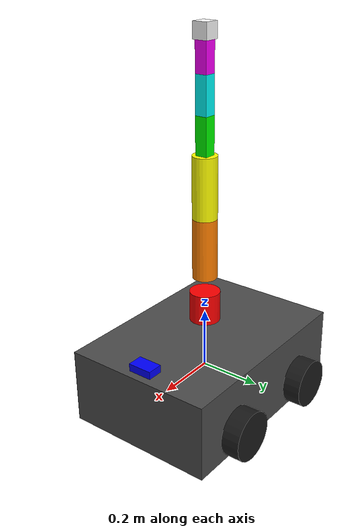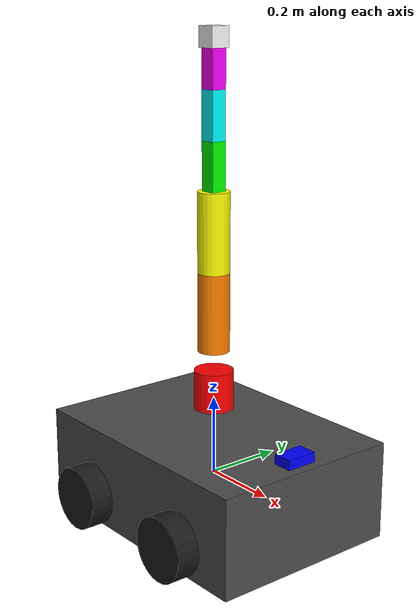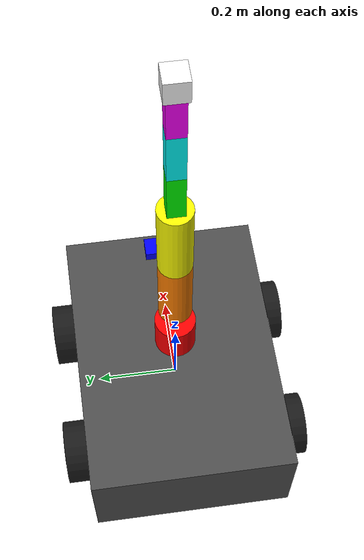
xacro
<?xml version="1.0"?>
<robot xmlns:xacro="http://www.ros.org/wiki/xacro" name="mobile_robot_with_arm">

  <xacro:include filename="$(find your_robot_description)/urdf/base.urdf.xacro" />
  <xacro:include filename="$(find your_robot_description)/urdf/manipulator.urdf.xacro" />
  <xacro:include filename="$(find your_robot_description)/urdf/sensors.urdf.xacro" />
  <xacro:include filename="$(find your_robot_description)/urdf/gazebo.urdf.xacro" />

  <xacro:property name="PI" value="3.14159265359" />
  <xacro:property name="base_length" value="0.7" />
  <xacro:property name="base_width" value="0.5" />
  <xacro:property name="base_height" value="0.25" />
  <xacro:property name="base_mass" value="15.0" />
  <xacro:property name="wheel_radius" value="0.08" />
  <xacro:property name="wheel_width" value="0.06" />
  <xacro:property name="wheel_mass" value="1.0" />
  <xacro:property name="arm_mass" value="10.0" />
  <xacro:property name="link_length" value="0.2" />

  <link name="world" />

  <joint name="world_to_base" type="fixed">
    <parent link="world" />
    <child link="base_link" />
    <origin xyz="0 0 0" rpy="0 0 0" />
  </joint>

  <xacro:create_base_platform
    base_length="${base_length}"
    base_width="${base_width}"
    base_height="${base_height}"
    base_mass="${base_mass}"
    wheel_radius="${wheel_radius}"
    wheel_width="${wheel_width}"
    wheel_mass="${wheel_mass}"
    PI="${PI}" />

  <xacro:create_manipulator
    arm_mass="${arm_mass}"
    link_length="${link_length}"
    PI="${PI}" />

  <xacro:create_sensors />

</robot>

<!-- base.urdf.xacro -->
<robot xmlns:xacro="http://www.ros.org/wiki/xacro">

  <xacro:macro name="create_base_platform" params="base_length base_width base_height base_mass wheel_radius wheel_width wheel_mass PI">

    <link name="base_link">
      <inertial>
        <mass value="${base_mass}" />
        <inertia ixx="0.5" ixy="0" ixz="0" iyy="0.5" iyz="0" izz="1.0" />
      </inertial>
      <visual>
        <geometry>
          <box size="${base_length} ${base_width} ${base_height}" />
        </geometry>
        <material name="DarkGray">
          <color rgba="0.3 0.3 0.3 1.0" />
        </material>
      </visual>
      <collision>
        <geometry>
          <box size="${base_length} ${base_width} ${base_height}" />
        </geometry>
      </collision>
    </link>

    <joint name="base_to_lidar" type="fixed">
      <parent link="base_link" />
      <child link="lidar_link" />
      <origin xyz="0 0 ${base_height/2 + 0.1}" rpy="0 0 0" />
    </joint>

    <joint name="base_to_camera" type="fixed">
      <parent link="base_link" />
      <child link="camera_link" />
      <origin xyz="${base_length/2 - 0.05} 0 ${base_height/2}" rpy="0 0 0" />
    </joint>

    <joint name="base_to_arm_base" type="fixed">
      <parent link="base_link" />
      <child link="arm_base_link" />
      <origin xyz="0 0 ${base_height/2 + 0.05}" rpy="0 0 0" />
    </joint>

    <xacro:macro name="mecanum_wheel" params="name parent_link x y">
      <link name="${name}">
        <inertial>
          <mass value="${wheel_mass}" />
          <inertia
            ixx="${0.5 * wheel_mass * wheel_radius * wheel_radius}"
            ixy="0" ixz="0"
            iyy="${0.5 * wheel_mass * wheel_radius * wheel_radius}"
            iyz="0"
            izz="${0.5 * wheel_mass * wheel_radius * wheel_radius}" />
        </inertial>
        <visual>
          <geometry>
            <cylinder radius="${wheel_radius}" length="${wheel_width}" />
          </geometry>
          <material name="Black">
            <color rgba="0.1 0.1 0.1 1.0" />
          </material>
          <origin rpy="${PI/2} 0 0" />
        </visual>
        <collision>
          <geometry>
            <cylinder radius="${wheel_radius}" length="${wheel_width}" />
          </geometry>
          <origin rpy="${PI/2} 0 0" />
        </collision>
      </link>

      <joint name="${name}_joint" type="continuous">
        <parent link="${parent_link}" />
        <child link="${name}" />
        <origin xyz="${x} ${y} -0.05" rpy="0 0 0" />
        <axis xyz="0 1 0" />
        <limit effort="100" velocity="10" />
      </joint>
    </xacro:macro>

    <xacro:mecanum_wheel name="wheel_fl" parent_link="base_link" x="${base_length/4}" y="${base_width/2 + wheel_width/2}" />
    <xacro:mecanum_wheel name="wheel_fr" parent_link="base_link" x="${base_length/4}" y="-${base_width/2 + wheel_width/2}" />
    <xacro:mecanum_wheel name="wheel_rl" parent_link="base_link" x="-${base_length/4}" y="${base_width/2 + wheel_width/2}" />
    <xacro:mecanum_wheel name="wheel_rr" parent_link="base_link" x="-${base_length/4}" y="-${base_width/2 + wheel_width/2}" />

  </xacro:macro>

</robot>

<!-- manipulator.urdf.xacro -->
<robot xmlns:xacro="http://www.ros.org/wiki/xacro">

  <xacro:macro name="create_manipulator" params="arm_mass link_length PI">

    <link name="arm_base_link" />

    <link name="link_1">
      <inertial>
        <mass value="${arm_mass/6}" />
        <inertia ixx="0.01" ixy="0" ixz="0" iyy="0.01" iyz="0" izz="0.01" />
      </inertial>
      <visual>
        <geometry>
          <cylinder radius="0.05" length="0.1" />
        </geometry>
        <material name="Red">
          <color rgba="1.0 0.0 0.0 1.0" />
        </material>
      </visual>
      <collision>
        <geometry>
          <cylinder radius="0.05" length="0.1" />
        </geometry>
      </collision>
    </link>

    <joint name="joint_1" type="revolute">
      <parent link="arm_base_link" />
      <child link="link_1" />
      <origin xyz="0 0 0.05" rpy="0 0 0" />
      <axis xyz="0 0 1" />
      <limit lower="-${PI}" upper="${PI}" effort="100" velocity="2" />
      <dynamics damping="0.1" friction="0.1" />
    </joint>

    <link name="link_2">
      <inertial>
        <mass value="${arm_mass/6}" />
        <inertia ixx="0.01" ixy="0" ixz="0" iyy="0.01" iyz="0" izz="0.01" />
      </inertial>
      <visual>
        <geometry>
          <cylinder radius="0.04" length="${link_length}" />
        </geometry>
        <material name="Orange">
          <color rgba="1.0 0.5 0.0 1.0" />
        </material>
        <origin xyz="0 0 ${link_length/2}" rpy="0 0 0" />
      </visual>
      <collision>
        <geometry>
          <cylinder radius="0.04" length="${link_length}" />
        </geometry>
        <origin xyz="0 0 ${link_length/2}" rpy="0 0 0" />
      </collision>
    </link>

    <joint name="joint_2" type="revolute">
      <parent link="link_1" />
      <child link="link_2" />
      <origin xyz="0 0 0.1" rpy="0 0 0" />
      <axis xyz="0 1 0" />
      <limit lower="-${PI/2}" upper="${PI/2}" effort="100" velocity="2" />
      <dynamics damping="0.1" friction="0.1" />
    </joint>

    <link name="link_3">
      <inertial>
        <mass value="${arm_mass/6}" />
        <inertia ixx="0.01" ixy="0" ixz="0" iyy="0.01" iyz="0" izz="0.01" />
      </inertial>
      <visual>
        <geometry>
          <cylinder radius="0.04" length="${link_length}" />
        </geometry>
        <material name="Yellow">
          <color rgba="1.0 1.0 0.0 1.0" />
        </material>
        <origin xyz="0 0 ${link_length/2}" rpy="0 0 0" />
      </visual>
      <collision>
        <geometry>
          <cylinder radius="0.04" length="${link_length}" />
        </geometry>
        <origin xyz="0 0 ${link_length/2}" rpy="0 0 0" />
      </collision>
    </link>

    <joint name="joint_3" type="revolute">
      <parent link="link_2" />
      <child link="link_3" />
      <origin xyz="0 0 ${link_length}" rpy="0 0 0" />
      <axis xyz="0 1 0" />
      <limit lower="-${PI/2}" upper="${PI/2}" effort="100" velocity="2" />
      <dynamics damping="0.1" friction="0.1" />
    </joint>

    <link name="link_4">
      <inertial>
        <mass value="${arm_mass/6}" />
        <inertia ixx="0.01" ixy="0" ixz="0" iyy="0.01" iyz="0" izz="0.01" />
      </inertial>
      <visual>
        <geometry>
          <box size="0.04 0.04 0.12" />
        </geometry>
        <material name="Green">
          <color rgba="0.0 1.0 0.0 1.0" />
        </material>
        <origin xyz="0 0 0.06" rpy="0 0 0" />
      </visual>
      <collision>
        <geometry>
          <box size="0.04 0.04 0.12" />
        </geometry>
        <origin xyz="0 0 0.06" rpy="0 0 0" />
      </collision>
    </link>

    <joint name="joint_4" type="revolute">
      <parent link="link_3" />
      <child link="link_4" />
      <origin xyz="0 0 ${link_length}" rpy="0 0 0" />
      <axis xyz="1 0 0" />
      <limit lower="-${PI}" upper="${PI}" effort="50" velocity="2" />
      <dynamics damping="0.1" friction="0.1" />
    </joint>

    <link name="link_5">
      <inertial>
        <mass value="${arm_mass/6}" />
        <inertia ixx="0.01" ixy="0" ixz="0" iyy="0.01" iyz="0" izz="0.01" />
      </inertial>
      <visual>
        <geometry>
          <box size="0.04 0.04 0.12" />
        </geometry>
        <material name="Cyan">
          <color rgba="0.0 1.0 1.0 1.0" />
        </material>
        <origin xyz="0 0 0.06" rpy="0 0 0" />
      </visual>
      <collision>
        <geometry>
          <box size="0.04 0.04 0.12" />
        </geometry>
        <origin xyz="0 0 0.06" rpy="0 0 0" />
      </collision>
    </link>

    <joint name="joint_5" type="revolute">
      <parent link="link_4" />
      <child link="link_5" />
      <origin xyz="0 0 0.12" rpy="0 0 0" />
      <axis xyz="0 1 0" />
      <limit lower="-${PI}" upper="${PI}" effort="50" velocity="2" />
      <dynamics damping="0.1" friction="0.1" />
    </joint>

    <link name="link_6">
      <inertial>
        <mass value="${arm_mass/6}" />
        <inertia ixx="0.01" ixy="0" ixz="0" iyy="0.01" iyz="0" izz="0.01" />
      </inertial>
      <visual>
        <geometry>
          <box size="0.04 0.04 0.12" />
        </geometry>
        <material name="Magenta">
          <color rgba="1.0 0.0 1.0 1.0" />
        </material>
        <origin xyz="0 0 0.06" rpy="0 0 0" />
      </visual>
      <collision>
        <geometry>
          <box size="0.04 0.04 0.12" />
        </geometry>
        <origin xyz="0 0 0.06" rpy="0 0 0" />
      </collision>
    </link>

    <joint name="joint_6" type="revolute">
      <parent link="link_5" />
      <child link="link_6" />
      <origin xyz="0 0 0.12" rpy="0 0 0" />
      <axis xyz="1 0 0" />
      <limit lower="-${PI}" upper="${PI}" effort="50" velocity="2" />
      <dynamics damping="0.1" friction="0.1" />
    </joint>

    <link name="gripper_link">
      <inertial>
        <mass value="0.5" />
        <inertia ixx="0.001" ixy="0" ixz="0" iyy="0.001" iyz="0" izz="0.001" />
      </inertial>
      <visual>
        <geometry>
          <box size="0.05 0.05 0.05" />
        </geometry>
        <material name="White">
          <color rgba="1.0 1.0 1.0 1.0" />
        </material>
      </visual>
      <collision>
        <geometry>
          <box size="0.05 0.05 0.05" />
        </geometry>
      </collision>
    </link>

    <joint name="joint_6_to_gripper" type="fixed">
      <parent link="link_6" />
      <child link="gripper_link" />
      <origin xyz="0 0 0.12" rpy="0 0 0" />
    </joint>

  </xacro:macro>

</robot>

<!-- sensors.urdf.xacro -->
<robot xmlns:xacro="http://www.ros.org/wiki/xacro">

  <xacro:macro name="create_sensors">

    <link name="lidar_link">
      <inertial>
        <mass value="0.1" />
        <inertia ixx="0.001" ixy="0" ixz="0" iyy="0.001" iyz="0" izz="0.001" />
      </inertial>
      <visual>
        <geometry>
          <cylinder radius="0.04" length="0.07" />
        </geometry>
        <material name="Red">
          <color rgba="1.0 0.0 0.0 1.0" />
        </material>
      </visual>
      <collision>
        <geometry>
          <cylinder radius="0.04" length="0.07" />
        </geometry>
      </collision>
    </link>

    <link name="camera_link">
      <inertial>
        <mass value="0.05" />
        <inertia ixx="0.001" ixy="0" ixz="0" iyy="0.001" iyz="0" izz="0.001" />
      </inertial>
      <visual>
        <geometry>
          <box size="0.05 0.08 0.05" />
        </geometry>
        <material name="Blue">
          <color rgba="0.0 0.0 1.0 1.0" />
        </material>
      </visual>
      <collision>
        <geometry>
          <box size="0.05 0.08 0.05" />
        </geometry>
      </collision>
    </link>

    <link name="camera_optical_frame" />

    <joint name="camera_to_optical_frame" type="fixed">
      <parent link="camera_link" />
      <child link="camera_optical_frame" />
      <origin xyz="0 0 0" rpy="-1.5708 0 -1.5708" />
    </joint>

  </xacro:macro>

</robot>
